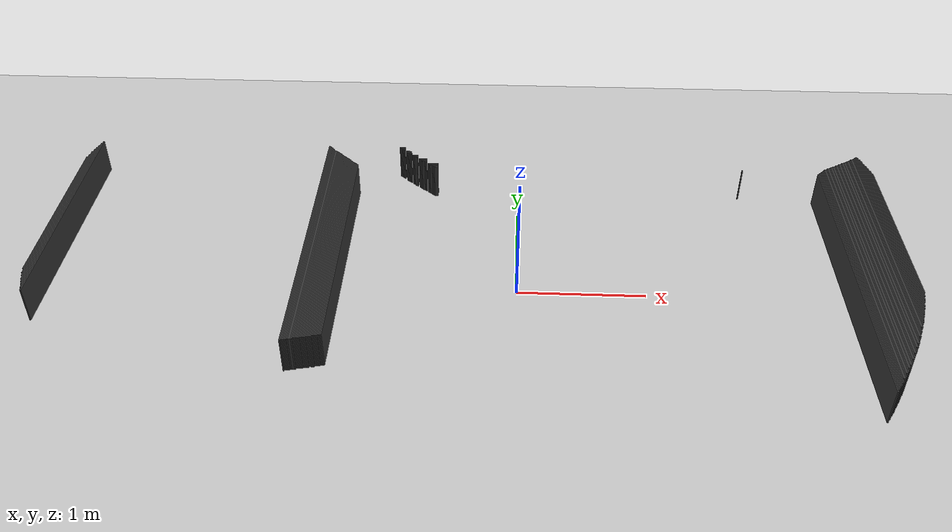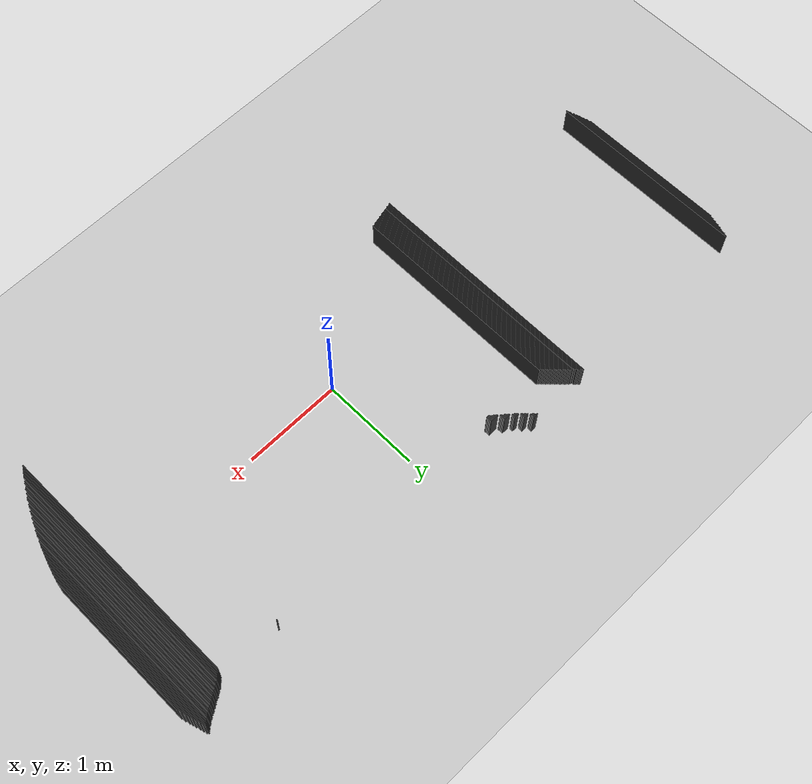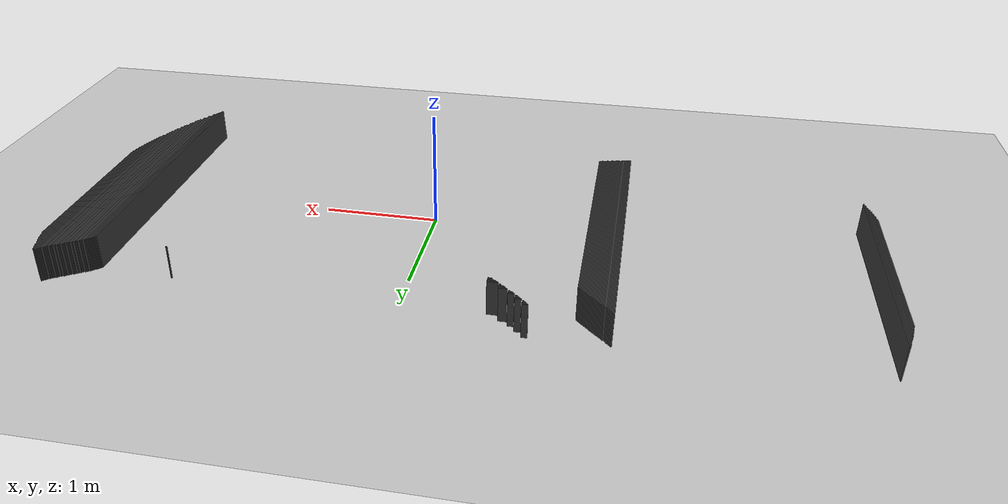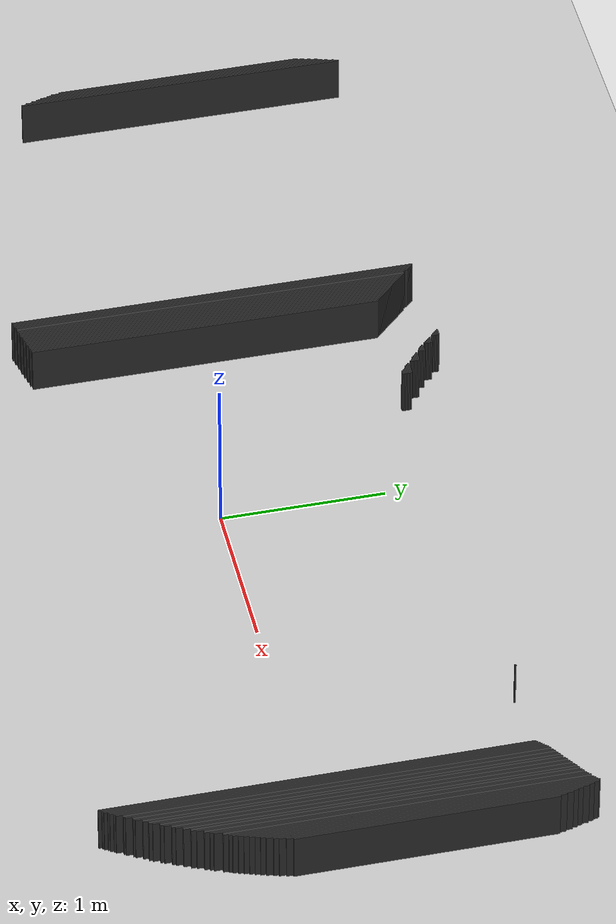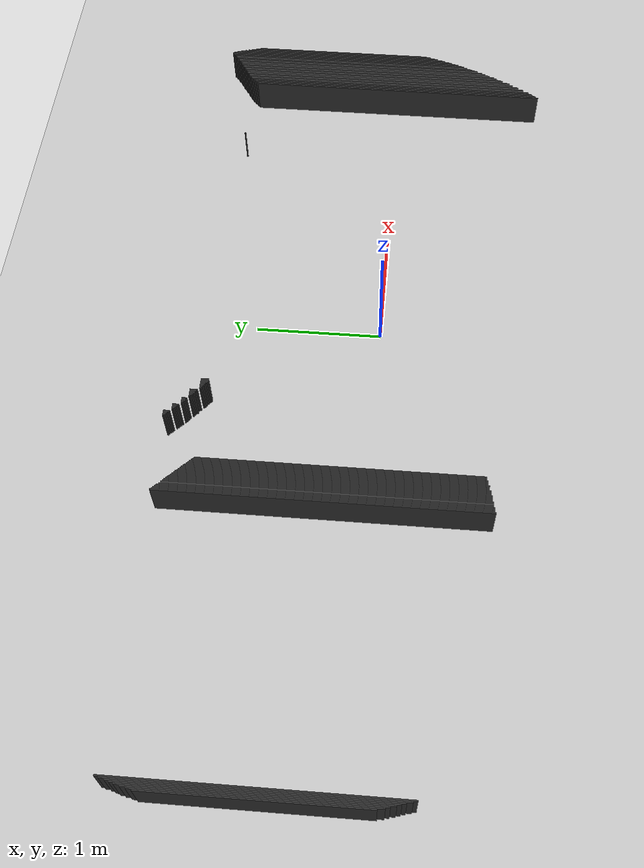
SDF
<sdf version="1.7">
 <world name="mapa_mundo">
  <model name="ground_plane">
   <static>true</static>
   <link name="link">
    <collision name="collision">
     <geometry><plane><normal>0 0 1</normal><size>10 10</size></plane></geometry>
     <surface><friction><ode><mu>100</mu><mu2>50</mu2></ode></friction></surface>
    </collision>
    <visual name="visual">
     <geometry><plane><normal>0 0 1</normal><size>10 10</size></plane></geometry>
     <material>
      <ambient>0.8 0.8 0.8 1</ambient>
      <diffuse>0.8 0.8 0.8 1</diffuse>
      <specular>0.8 0.8 0.8 1</specular>
     </material>
    </visual>
   </link>
  </model>
  <model name="wall_500">
   <static>true</static>
   <link name="link">
    <collision name="collision"><geometry><box><size>0.05 0.01 0.3</size></box></geometry></collision>
    <visual name="visual">
     <geometry><box><size>0.05 0.01 0.3</size></box></geometry>
     <material><ambient>0.2 0.2 0.2 1</ambient><diffuse>0.2 0.2 0.2 1</diffuse></material>
    </visual>
    <pose>-1.0150000000000001 1.565 0.15 0 0 0</pose>
   </link>
  </model>
  <model name="wall_501">
   <static>true</static>
   <link name="link">
    <collision name="collision"><geometry><box><size>0.01 2.07 0.3</size></box></geometry></collision>
    <visual name="visual">
     <geometry><box><size>0.01 2.07 0.3</size></box></geometry>
     <material><ambient>0.2 0.2 0.2 1</ambient><diffuse>0.2 0.2 0.2 1</diffuse></material>
    </visual>
    <pose>2.9050000000000002 0.535 0.15 0 0 0</pose>
   </link>
  </model>
  <model name="wall_502">
   <static>true</static>
   <link name="link">
    <collision name="collision">
     <geometry><box><size>0.01 2.0300000000000002 0.3</size></box></geometry>
    </collision>
    <visual name="visual">
     <geometry><box><size>0.01 2.0300000000000002 0.3</size></box></geometry>
     <material><ambient>0.2 0.2 0.2 1</ambient><diffuse>0.2 0.2 0.2 1</diffuse></material>
    </visual>
    <pose>-3.6550000000000002 0.545 0.15 0 0 0</pose>
   </link>
  </model>
  <model name="wall_503">
   <static>true</static>
   <link name="link">
    <collision name="collision"><geometry><box><size>0.01 2.49 0.3</size></box></geometry></collision>
    <visual name="visual">
     <geometry><box><size>0.01 2.49 0.3</size></box></geometry>
     <material><ambient>0.2 0.2 0.2 1</ambient><diffuse>0.2 0.2 0.2 1</diffuse></material>
    </visual>
    <pose>-1.655 0.315 0.15 0 0 0</pose>
   </link>
  </model>
  <model name="wall_504">
   <static>true</static>
   <link name="link">
    <collision name="collision"><geometry><box><size>0.04 0.01 0.3</size></box></geometry></collision>
    <visual name="visual">
     <geometry><box><size>0.04 0.01 0.3</size></box></geometry>
     <material><ambient>0.2 0.2 0.2 1</ambient><diffuse>0.2 0.2 0.2 1</diffuse></material>
    </visual>
    <pose>-1.01 1.555 0.15 0 0 0</pose>
   </link>
  </model>
  <model name="wall_505">
   <static>true</static>
   <link name="link">
    <collision name="collision"><geometry><box><size>0.01 2.09 0.3</size></box></geometry></collision>
    <visual name="visual">
     <geometry><box><size>0.01 2.09 0.3</size></box></geometry>
     <material><ambient>0.2 0.2 0.2 1</ambient><diffuse>0.2 0.2 0.2 1</diffuse></material>
    </visual>
    <pose>2.895 0.515 0.15 0 0 0</pose>
   </link>
  </model>
  <model name="wall_506">
   <static>true</static>
   <link name="link">
    <collision name="collision">
     <geometry><box><size>0.01 2.0300000000000002 0.3</size></box></geometry>
    </collision>
    <visual name="visual">
     <geometry><box><size>0.01 2.0300000000000002 0.3</size></box></geometry>
     <material><ambient>0.2 0.2 0.2 1</ambient><diffuse>0.2 0.2 0.2 1</diffuse></material>
    </visual>
    <pose>2.915 0.545 0.15 0 0 0</pose>
   </link>
  </model>
  <model name="wall_507">
   <static>true</static>
   <link name="link">
    <collision name="collision"><geometry><box><size>0.01 2.47 0.3</size></box></geometry></collision>
    <visual name="visual">
     <geometry><box><size>0.01 2.47 0.3</size></box></geometry>
     <material><ambient>0.2 0.2 0.2 1</ambient><diffuse>0.2 0.2 0.2 1</diffuse></material>
    </visual>
    <pose>-1.645 0.315 0.15 0 0 0</pose>
   </link>
  </model>
  <model name="wall_508">
   <static>true</static>
   <link name="link">
    <collision name="collision"><geometry><box><size>0.03 0.01 0.3</size></box></geometry></collision>
    <visual name="visual">
     <geometry><box><size>0.03 0.01 0.3</size></box></geometry>
     <material><ambient>0.2 0.2 0.2 1</ambient><diffuse>0.2 0.2 0.2 1</diffuse></material>
    </visual>
    <pose>-1.0050000000000001 1.545 0.15 0 0 0</pose>
   </link>
  </model>
  <model name="wall_509">
   <static>true</static>
   <link name="link">
    <collision name="collision"><geometry><box><size>0.01 2.11 0.3</size></box></geometry></collision>
    <visual name="visual">
     <geometry><box><size>0.01 2.11 0.3</size></box></geometry>
     <material><ambient>0.2 0.2 0.2 1</ambient><diffuse>0.2 0.2 0.2 1</diffuse></material>
    </visual>
    <pose>2.8850000000000002 0.495 0.15 0 0 0</pose>
   </link>
  </model>
  <model name="wall_510">
   <static>true</static>
   <link name="link">
    <collision name="collision"><geometry><box><size>0.01 2.46 0.3</size></box></geometry></collision>
    <visual name="visual">
     <geometry><box><size>0.01 2.46 0.3</size></box></geometry>
     <material><ambient>0.2 0.2 0.2 1</ambient><diffuse>0.2 0.2 0.2 1</diffuse></material>
    </visual>
    <pose>-1.635 0.31 0.15 0 0 0</pose>
   </link>
  </model>
  <model name="wall_511">
   <static>true</static>
   <link name="link">
    <collision name="collision"><geometry><box><size>0.02 0.01 0.3</size></box></geometry></collision>
    <visual name="visual">
     <geometry><box><size>0.02 0.01 0.3</size></box></geometry>
     <material><ambient>0.2 0.2 0.2 1</ambient><diffuse>0.2 0.2 0.2 1</diffuse></material>
    </visual>
    <pose>-1.0 1.5350000000000001 0.15 0 0 0</pose>
   </link>
  </model>
  <model name="wall_512">
   <static>true</static>
   <link name="link">
    <collision name="collision"><geometry><box><size>0.01 2.12 0.3</size></box></geometry></collision>
    <visual name="visual">
     <geometry><box><size>0.01 2.12 0.3</size></box></geometry>
     <material><ambient>0.2 0.2 0.2 1</ambient><diffuse>0.2 0.2 0.2 1</diffuse></material>
    </visual>
    <pose>2.875 0.48 0.15 0 0 0</pose>
   </link>
  </model>
  <model name="wall_513">
   <static>true</static>
   <link name="link">
    <collision name="collision"><geometry><box><size>0.01 1.97 0.3</size></box></geometry></collision>
    <visual name="visual">
     <geometry><box><size>0.01 1.97 0.3</size></box></geometry>
     <material><ambient>0.2 0.2 0.2 1</ambient><diffuse>0.2 0.2 0.2 1</diffuse></material>
    </visual>
    <pose>-3.665 0.545 0.15 0 0 0</pose>
   </link>
  </model>
  <model name="wall_514">
   <static>true</static>
   <link name="link">
    <collision name="collision"><geometry><box><size>0.01 2.45 0.3</size></box></geometry></collision>
    <visual name="visual">
     <geometry><box><size>0.01 2.45 0.3</size></box></geometry>
     <material><ambient>0.2 0.2 0.2 1</ambient><diffuse>0.2 0.2 0.2 1</diffuse></material>
    </visual>
    <pose>-1.625 0.305 0.15 0 0 0</pose>
   </link>
  </model>
  <model name="wall_515">
   <static>true</static>
   <link name="link">
    <collision name="collision"><geometry><box><size>0.01 0.01 0.3</size></box></geometry></collision>
    <visual name="visual">
     <geometry><box><size>0.01 0.01 0.3</size></box></geometry>
     <material><ambient>0.2 0.2 0.2 1</ambient><diffuse>0.2 0.2 0.2 1</diffuse></material>
    </visual>
    <pose>-0.995 1.5250000000000001 0.15 0 0 0</pose>
   </link>
  </model>
  <model name="wall_516">
   <static>true</static>
   <link name="link">
    <collision name="collision"><geometry><box><size>0.02 2.14 0.3</size></box></geometry></collision>
    <visual name="visual">
     <geometry><box><size>0.02 2.14 0.3</size></box></geometry>
     <material><ambient>0.2 0.2 0.2 1</ambient><diffuse>0.2 0.2 0.2 1</diffuse></material>
    </visual>
    <pose>2.86 0.46 0.15 0 0 0</pose>
   </link>
  </model>
  <model name="wall_517">
   <static>true</static>
   <link name="link">
    <collision name="collision"><geometry><box><size>0.01 1.97 0.3</size></box></geometry></collision>
    <visual name="visual">
     <geometry><box><size>0.01 1.97 0.3</size></box></geometry>
     <material><ambient>0.2 0.2 0.2 1</ambient><diffuse>0.2 0.2 0.2 1</diffuse></material>
    </visual>
    <pose>2.9250000000000003 0.545 0.15 0 0 0</pose>
   </link>
  </model>
  <model name="wall_518">
   <static>true</static>
   <link name="link">
    <collision name="collision"><geometry><box><size>0.01 2.44 0.3</size></box></geometry></collision>
    <visual name="visual">
     <geometry><box><size>0.01 2.44 0.3</size></box></geometry>
     <material><ambient>0.2 0.2 0.2 1</ambient><diffuse>0.2 0.2 0.2 1</diffuse></material>
    </visual>
    <pose>-1.615 0.3 0.15 0 0 0</pose>
   </link>
  </model>
  <model name="wall_519">
   <static>true</static>
   <link name="link">
    <collision name="collision"><geometry><box><size>0.01 2.18 0.3</size></box></geometry></collision>
    <visual name="visual">
     <geometry><box><size>0.01 2.18 0.3</size></box></geometry>
     <material><ambient>0.2 0.2 0.2 1</ambient><diffuse>0.2 0.2 0.2 1</diffuse></material>
    </visual>
    <pose>2.845 0.43 0.15 0 0 0</pose>
   </link>
  </model>
  <model name="wall_520">
   <static>true</static>
   <link name="link">
    <collision name="collision"><geometry><box><size>0.05 0.01 0.3</size></box></geometry></collision>
    <visual name="visual">
     <geometry><box><size>0.05 0.01 0.3</size></box></geometry>
     <material><ambient>0.2 0.2 0.2 1</ambient><diffuse>0.2 0.2 0.2 1</diffuse></material>
    </visual>
    <pose>-0.9550000000000001 1.5050000000000001 0.15 0 0 0</pose>
   </link>
  </model>
  <model name="wall_521">
   <static>true</static>
   <link name="link">
    <collision name="collision"><geometry><box><size>0.01 2.19 0.3</size></box></geometry></collision>
    <visual name="visual">
     <geometry><box><size>0.01 2.19 0.3</size></box></geometry>
     <material><ambient>0.2 0.2 0.2 1</ambient><diffuse>0.2 0.2 0.2 1</diffuse></material>
    </visual>
    <pose>2.835 0.41500000000000004 0.15 0 0 0</pose>
   </link>
  </model>
  <model name="wall_522">
   <static>true</static>
   <link name="link">
    <collision name="collision"><geometry><box><size>0.01 2.41 0.3</size></box></geometry></collision>
    <visual name="visual">
     <geometry><box><size>0.01 2.41 0.3</size></box></geometry>
     <material><ambient>0.2 0.2 0.2 1</ambient><diffuse>0.2 0.2 0.2 1</diffuse></material>
    </visual>
    <pose>-1.605 0.295 0.15 0 0 0</pose>
   </link>
  </model>
  <model name="wall_523">
   <static>true</static>
   <link name="link">
    <collision name="collision"><geometry><box><size>0.04 0.01 0.3</size></box></geometry></collision>
    <visual name="visual">
     <geometry><box><size>0.04 0.01 0.3</size></box></geometry>
     <material><ambient>0.2 0.2 0.2 1</ambient><diffuse>0.2 0.2 0.2 1</diffuse></material>
    </visual>
    <pose>-0.9500000000000001 1.495 0.15 0 0 0</pose>
   </link>
  </model>
  <model name="wall_524">
   <static>true</static>
   <link name="link">
    <collision name="collision"><geometry><box><size>0.02 2.21 0.3</size></box></geometry></collision>
    <visual name="visual">
     <geometry><box><size>0.02 2.21 0.3</size></box></geometry>
     <material><ambient>0.2 0.2 0.2 1</ambient><diffuse>0.2 0.2 0.2 1</diffuse></material>
    </visual>
    <pose>2.82 0.395 0.15 0 0 0</pose>
   </link>
  </model>
  <model name="wall_525">
   <static>true</static>
   <link name="link">
    <collision name="collision">
     <geometry><box><size>0.01 1.9100000000000001 0.3</size></box></geometry>
    </collision>
    <visual name="visual">
     <geometry><box><size>0.01 1.9100000000000001 0.3</size></box></geometry>
     <material><ambient>0.2 0.2 0.2 1</ambient><diffuse>0.2 0.2 0.2 1</diffuse></material>
    </visual>
    <pose>2.935 0.545 0.15 0 0 0</pose>
   </link>
  </model>
  <model name="wall_526">
   <static>true</static>
   <link name="link">
    <collision name="collision">
     <geometry><box><size>0.01 1.8900000000000001 0.3</size></box></geometry>
    </collision>
    <visual name="visual">
     <geometry><box><size>0.01 1.8900000000000001 0.3</size></box></geometry>
     <material><ambient>0.2 0.2 0.2 1</ambient><diffuse>0.2 0.2 0.2 1</diffuse></material>
    </visual>
    <pose>-3.6750000000000003 0.545 0.15 0 0 0</pose>
   </link>
  </model>
  <model name="wall_527">
   <static>true</static>
   <link name="link">
    <collision name="collision"><geometry><box><size>0.02 2.4 0.3</size></box></geometry></collision>
    <visual name="visual">
     <geometry><box><size>0.02 2.4 0.3</size></box></geometry>
     <material><ambient>0.2 0.2 0.2 1</ambient><diffuse>0.2 0.2 0.2 1</diffuse></material>
    </visual>
    <pose>-1.59 0.29 0.15 0 0 0</pose>
   </link>
  </model>
  <model name="wall_528">
   <static>true</static>
   <link name="link">
    <collision name="collision"><geometry><box><size>0.03 0.01 0.3</size></box></geometry></collision>
    <visual name="visual">
     <geometry><box><size>0.03 0.01 0.3</size></box></geometry>
     <material><ambient>0.2 0.2 0.2 1</ambient><diffuse>0.2 0.2 0.2 1</diffuse></material>
    </visual>
    <pose>-0.9450000000000001 1.485 0.15 0 0 0</pose>
   </link>
  </model>
  <model name="wall_529">
   <static>true</static>
   <link name="link">
    <collision name="collision"><geometry><box><size>0.01 2.24 0.3</size></box></geometry></collision>
    <visual name="visual">
     <geometry><box><size>0.01 2.24 0.3</size></box></geometry>
     <material><ambient>0.2 0.2 0.2 1</ambient><diffuse>0.2 0.2 0.2 1</diffuse></material>
    </visual>
    <pose>2.805 0.37 0.15 0 0 0</pose>
   </link>
  </model>
  <model name="wall_530">
   <static>true</static>
   <link name="link">
    <collision name="collision"><geometry><box><size>0.01 2.39 0.3</size></box></geometry></collision>
    <visual name="visual">
     <geometry><box><size>0.01 2.39 0.3</size></box></geometry>
     <material><ambient>0.2 0.2 0.2 1</ambient><diffuse>0.2 0.2 0.2 1</diffuse></material>
    </visual>
    <pose>-1.575 0.28500000000000003 0.15 0 0 0</pose>
   </link>
  </model>
  <model name="wall_531">
   <static>true</static>
   <link name="link">
    <collision name="collision"><geometry><box><size>0.02 0.01 0.3</size></box></geometry></collision>
    <visual name="visual">
     <geometry><box><size>0.02 0.01 0.3</size></box></geometry>
     <material><ambient>0.2 0.2 0.2 1</ambient><diffuse>0.2 0.2 0.2 1</diffuse></material>
    </visual>
    <pose>-0.9400000000000001 1.475 0.15 0 0 0</pose>
   </link>
  </model>
  <model name="wall_532">
   <static>true</static>
   <link name="link">
    <collision name="collision">
     <geometry><box><size>0.02 2.2600000000000002 0.3</size></box></geometry>
    </collision>
    <visual name="visual">
     <geometry><box><size>0.02 2.2600000000000002 0.3</size></box></geometry>
     <material><ambient>0.2 0.2 0.2 1</ambient><diffuse>0.2 0.2 0.2 1</diffuse></material>
    </visual>
    <pose>2.79 0.35000000000000003 0.15 0 0 0</pose>
   </link>
  </model>
  <model name="wall_533">
   <static>true</static>
   <link name="link">
    <collision name="collision"><geometry><box><size>0.01 2.37 0.3</size></box></geometry></collision>
    <visual name="visual">
     <geometry><box><size>0.01 2.37 0.3</size></box></geometry>
     <material><ambient>0.2 0.2 0.2 1</ambient><diffuse>0.2 0.2 0.2 1</diffuse></material>
    </visual>
    <pose>-1.565 0.28500000000000003 0.15 0 0 0</pose>
   </link>
  </model>
  <model name="wall_534">
   <static>true</static>
   <link name="link">
    <collision name="collision"><geometry><box><size>0.01 0.01 0.3</size></box></geometry></collision>
    <visual name="visual">
     <geometry><box><size>0.01 0.01 0.3</size></box></geometry>
     <material><ambient>0.2 0.2 0.2 1</ambient><diffuse>0.2 0.2 0.2 1</diffuse></material>
    </visual>
    <pose>-0.935 1.465 0.15 0 0 0</pose>
   </link>
  </model>
  <model name="wall_535">
   <static>true</static>
   <link name="link">
    <collision name="collision"><geometry><box><size>0.02 2.29 0.3</size></box></geometry></collision>
    <visual name="visual">
     <geometry><box><size>0.02 2.29 0.3</size></box></geometry>
     <material><ambient>0.2 0.2 0.2 1</ambient><diffuse>0.2 0.2 0.2 1</diffuse></material>
    </visual>
    <pose>2.77 0.325 0.15 0 0 0</pose>
   </link>
  </model>
  <model name="wall_536">
   <static>true</static>
   <link name="link">
    <collision name="collision"><geometry><box><size>0.01 1.83 0.3</size></box></geometry></collision>
    <visual name="visual">
     <geometry><box><size>0.01 1.83 0.3</size></box></geometry>
     <material><ambient>0.2 0.2 0.2 1</ambient><diffuse>0.2 0.2 0.2 1</diffuse></material>
    </visual>
    <pose>-3.685 0.545 0.15 0 0 0</pose>
   </link>
  </model>
  <model name="wall_537">
   <static>true</static>
   <link name="link">
    <collision name="collision"><geometry><box><size>0.01 2.36 0.3</size></box></geometry></collision>
    <visual name="visual">
     <geometry><box><size>0.01 2.36 0.3</size></box></geometry>
     <material><ambient>0.2 0.2 0.2 1</ambient><diffuse>0.2 0.2 0.2 1</diffuse></material>
    </visual>
    <pose>-1.555 0.28 0.15 0 0 0</pose>
   </link>
  </model>
  <model name="wall_538">
   <static>true</static>
   <link name="link">
    <collision name="collision"><geometry><box><size>0.01 2.32 0.3</size></box></geometry></collision>
    <visual name="visual">
     <geometry><box><size>0.01 2.32 0.3</size></box></geometry>
     <material><ambient>0.2 0.2 0.2 1</ambient><diffuse>0.2 0.2 0.2 1</diffuse></material>
    </visual>
    <pose>2.755 0.3 0.15 0 0 0</pose>
   </link>
  </model>
  <model name="wall_539">
   <static>true</static>
   <link name="link">
    <collision name="collision"><geometry><box><size>0.01 1.84 0.3</size></box></geometry></collision>
    <visual name="visual">
     <geometry><box><size>0.01 1.84 0.3</size></box></geometry>
     <material><ambient>0.2 0.2 0.2 1</ambient><diffuse>0.2 0.2 0.2 1</diffuse></material>
    </visual>
    <pose>2.945 0.54 0.15 0 0 0</pose>
   </link>
  </model>
  <model name="wall_540">
   <static>true</static>
   <link name="link">
    <collision name="collision"><geometry><box><size>0.01 2.35 0.3</size></box></geometry></collision>
    <visual name="visual">
     <geometry><box><size>0.01 2.35 0.3</size></box></geometry>
     <material><ambient>0.2 0.2 0.2 1</ambient><diffuse>0.2 0.2 0.2 1</diffuse></material>
    </visual>
    <pose>-1.545 0.275 0.15 0 0 0</pose>
   </link>
  </model>
  <model name="wall_541">
   <static>true</static>
   <link name="link">
    <collision name="collision"><geometry><box><size>0.05 0.01 0.3</size></box></geometry></collision>
    <visual name="visual">
     <geometry><box><size>0.05 0.01 0.3</size></box></geometry>
     <material><ambient>0.2 0.2 0.2 1</ambient><diffuse>0.2 0.2 0.2 1</diffuse></material>
    </visual>
    <pose>-0.895 1.445 0.15 0 0 0</pose>
   </link>
  </model>
  <model name="wall_542">
   <static>true</static>
   <link name="link">
    <collision name="collision"><geometry><box><size>0.02 2.33 0.3</size></box></geometry></collision>
    <visual name="visual">
     <geometry><box><size>0.02 2.33 0.3</size></box></geometry>
     <material><ambient>0.2 0.2 0.2 1</ambient><diffuse>0.2 0.2 0.2 1</diffuse></material>
    </visual>
    <pose>2.74 0.28500000000000003 0.15 0 0 0</pose>
   </link>
  </model>
  <model name="wall_543">
   <static>true</static>
   <link name="link">
    <collision name="collision"><geometry><box><size>0.01 2.34 0.3</size></box></geometry></collision>
    <visual name="visual">
     <geometry><box><size>0.01 2.34 0.3</size></box></geometry>
     <material><ambient>0.2 0.2 0.2 1</ambient><diffuse>0.2 0.2 0.2 1</diffuse></material>
    </visual>
    <pose>-1.5350000000000001 0.27 0.15 0 0 0</pose>
   </link>
  </model>
  <model name="wall_544">
   <static>true</static>
   <link name="link">
    <collision name="collision"><geometry><box><size>0.04 0.01 0.3</size></box></geometry></collision>
    <visual name="visual">
     <geometry><box><size>0.04 0.01 0.3</size></box></geometry>
     <material><ambient>0.2 0.2 0.2 1</ambient><diffuse>0.2 0.2 0.2 1</diffuse></material>
    </visual>
    <pose>-0.89 1.435 0.15 0 0 0</pose>
   </link>
  </model>
  <model name="wall_545">
   <static>true</static>
   <link name="link">
    <collision name="collision"><geometry><box><size>0.01 2.36 0.3</size></box></geometry></collision>
    <visual name="visual">
     <geometry><box><size>0.01 2.36 0.3</size></box></geometry>
     <material><ambient>0.2 0.2 0.2 1</ambient><diffuse>0.2 0.2 0.2 1</diffuse></material>
    </visual>
    <pose>2.725 0.26 0.15 0 0 0</pose>
   </link>
  </model>
  <model name="wall_546">
   <static>true</static>
   <link name="link">
    <collision name="collision"><geometry><box><size>0.01 1.77 0.3</size></box></geometry></collision>
    <visual name="visual">
     <geometry><box><size>0.01 1.77 0.3</size></box></geometry>
     <material><ambient>0.2 0.2 0.2 1</ambient><diffuse>0.2 0.2 0.2 1</diffuse></material>
    </visual>
    <pose>-3.6950000000000003 0.545 0.15 0 0 0</pose>
   </link>
  </model>
  <model name="wall_547">
   <static>true</static>
   <link name="link">
    <collision name="collision"><geometry><box><size>0.01 2.33 0.3</size></box></geometry></collision>
    <visual name="visual">
     <geometry><box><size>0.01 2.33 0.3</size></box></geometry>
     <material><ambient>0.2 0.2 0.2 1</ambient><diffuse>0.2 0.2 0.2 1</diffuse></material>
    </visual>
    <pose>-1.5250000000000001 0.265 0.15 0 0 0</pose>
   </link>
  </model>
  <model name="wall_548">
   <static>true</static>
   <link name="link">
    <collision name="collision"><geometry><box><size>0.03 0.01 0.3</size></box></geometry></collision>
    <visual name="visual">
     <geometry><box><size>0.03 0.01 0.3</size></box></geometry>
     <material><ambient>0.2 0.2 0.2 1</ambient><diffuse>0.2 0.2 0.2 1</diffuse></material>
    </visual>
    <pose>-0.885 1.425 0.15 0 0 0</pose>
   </link>
  </model>
  <model name="wall_549">
   <static>true</static>
   <link name="link">
    <collision name="collision"><geometry><box><size>0.02 2.37 0.3</size></box></geometry></collision>
    <visual name="visual">
     <geometry><box><size>0.02 2.37 0.3</size></box></geometry>
     <material><ambient>0.2 0.2 0.2 1</ambient><diffuse>0.2 0.2 0.2 1</diffuse></material>
    </visual>
    <pose>2.71 0.245 0.15 0 0 0</pose>
   </link>
  </model>
  <model name="wall_550">
   <static>true</static>
   <link name="link">
    <collision name="collision"><geometry><box><size>0.01 1.77 0.3</size></box></geometry></collision>
    <visual name="visual">
     <geometry><box><size>0.01 1.77 0.3</size></box></geometry>
     <material><ambient>0.2 0.2 0.2 1</ambient><diffuse>0.2 0.2 0.2 1</diffuse></material>
    </visual>
    <pose>2.955 0.545 0.15 0 0 0</pose>
   </link>
  </model>
  <model name="wall_551">
   <static>true</static>
   <link name="link">
    <collision name="collision"><geometry><box><size>0.01 2.31 0.3</size></box></geometry></collision>
    <visual name="visual">
     <geometry><box><size>0.01 2.31 0.3</size></box></geometry>
     <material><ambient>0.2 0.2 0.2 1</ambient><diffuse>0.2 0.2 0.2 1</diffuse></material>
    </visual>
    <pose>-1.5150000000000001 0.265 0.15 0 0 0</pose>
   </link>
  </model>
  <model name="wall_552">
   <static>true</static>
   <link name="link">
    <collision name="collision"><geometry><box><size>0.01 0.01 0.3</size></box></geometry></collision>
    <visual name="visual">
     <geometry><box><size>0.01 0.01 0.3</size></box></geometry>
     <material><ambient>0.2 0.2 0.2 1</ambient><diffuse>0.2 0.2 0.2 1</diffuse></material>
    </visual>
    <pose>-0.875 1.415 0.15 0 0 0</pose>
   </link>
  </model>
  <model name="wall_553">
   <static>true</static>
   <link name="link">
    <collision name="collision"><geometry><box><size>0.01 2.4 0.3</size></box></geometry></collision>
    <visual name="visual">
     <geometry><box><size>0.01 2.4 0.3</size></box></geometry>
     <material><ambient>0.2 0.2 0.2 1</ambient><diffuse>0.2 0.2 0.2 1</diffuse></material>
    </visual>
    <pose>2.695 0.22 0.15 0 0 0</pose>
   </link>
  </model>
  <model name="wall_554">
   <static>true</static>
   <link name="link">
    <collision name="collision">
     <geometry><box><size>0.01 2.3000000000000003 0.3</size></box></geometry>
    </collision>
    <visual name="visual">
     <geometry><box><size>0.01 2.3000000000000003 0.3</size></box></geometry>
     <material><ambient>0.2 0.2 0.2 1</ambient><diffuse>0.2 0.2 0.2 1</diffuse></material>
    </visual>
    <pose>-1.5050000000000001 0.26 0.15 0 0 0</pose>
   </link>
  </model>
  <model name="wall_555">
   <static>true</static>
   <link name="link">
    <collision name="collision"><geometry><box><size>0.02 2.41 0.3</size></box></geometry></collision>
    <visual name="visual">
     <geometry><box><size>0.02 2.41 0.3</size></box></geometry>
     <material><ambient>0.2 0.2 0.2 1</ambient><diffuse>0.2 0.2 0.2 1</diffuse></material>
    </visual>
    <pose>2.68 0.20500000000000002 0.15 0 0 0</pose>
   </link>
  </model>
  <model name="wall_556">
   <static>true</static>
   <link name="link">
    <collision name="collision"><geometry><box><size>0.01 2.29 0.3</size></box></geometry></collision>
    <visual name="visual">
     <geometry><box><size>0.01 2.29 0.3</size></box></geometry>
     <material><ambient>0.2 0.2 0.2 1</ambient><diffuse>0.2 0.2 0.2 1</diffuse></material>
    </visual>
    <pose>-1.495 0.255 0.15 0 0 0</pose>
   </link>
  </model>
  <model name="wall_557">
   <static>true</static>
   <link name="link">
    <collision name="collision"><geometry><box><size>0.07 0.01 0.3</size></box></geometry></collision>
    <visual name="visual">
     <geometry><box><size>0.07 0.01 0.3</size></box></geometry>
     <material><ambient>0.2 0.2 0.2 1</ambient><diffuse>0.2 0.2 0.2 1</diffuse></material>
    </visual>
    <pose>-0.8250000000000001 1.395 0.15 0 0 0</pose>
   </link>
  </model>
  <model name="wall_558">
   <static>true</static>
   <link name="link">
    <collision name="collision"><geometry><box><size>0.02 2.43 0.3</size></box></geometry></collision>
    <visual name="visual">
     <geometry><box><size>0.02 2.43 0.3</size></box></geometry>
     <material><ambient>0.2 0.2 0.2 1</ambient><diffuse>0.2 0.2 0.2 1</diffuse></material>
    </visual>
    <pose>2.66 0.185 0.15 0 0 0</pose>
   </link>
  </model>
  <model name="wall_559">
   <static>true</static>
   <link name="link">
    <collision name="collision"><geometry><box><size>0.01 1.71 0.3</size></box></geometry></collision>
    <visual name="visual">
     <geometry><box><size>0.01 1.71 0.3</size></box></geometry>
     <material><ambient>0.2 0.2 0.2 1</ambient><diffuse>0.2 0.2 0.2 1</diffuse></material>
    </visual>
    <pose>2.965 0.545 0.15 0 0 0</pose>
   </link>
  </model>
  <model name="wall_560">
   <static>true</static>
   <link name="link">
    <collision name="collision"><geometry><box><size>0.01 1.69 0.3</size></box></geometry></collision>
    <visual name="visual">
     <geometry><box><size>0.01 1.69 0.3</size></box></geometry>
     <material><ambient>0.2 0.2 0.2 1</ambient><diffuse>0.2 0.2 0.2 1</diffuse></material>
    </visual>
    <pose>-3.705 0.545 0.15 0 0 0</pose>
   </link>
  </model>
  <model name="wall_561">
   <static>true</static>
   <link name="link">
    <collision name="collision">
     <geometry><box><size>0.01 2.2800000000000002 0.3</size></box></geometry>
    </collision>
    <visual name="visual">
     <geometry><box><size>0.01 2.2800000000000002 0.3</size></box></geometry>
     <material><ambient>0.2 0.2 0.2 1</ambient><diffuse>0.2 0.2 0.2 1</diffuse></material>
    </visual>
    <pose>-1.485 0.25 0.15 0 0 0</pose>
   </link>
  </model>
  <model name="wall_562">
   <static>true</static>
   <link name="link">
    <collision name="collision"><geometry><box><size>0.06 0.01 0.3</size></box></geometry></collision>
    <visual name="visual">
     <geometry><box><size>0.06 0.01 0.3</size></box></geometry>
     <material><ambient>0.2 0.2 0.2 1</ambient><diffuse>0.2 0.2 0.2 1</diffuse></material>
    </visual>
    <pose>-0.8200000000000001 1.385 0.15 0 0 0</pose>
   </link>
  </model>
  <model name="wall_563">
   <static>true</static>
   <link name="link">
    <collision name="collision"><geometry><box><size>0.01 2.46 0.3</size></box></geometry></collision>
    <visual name="visual">
     <geometry><box><size>0.01 2.46 0.3</size></box></geometry>
     <material><ambient>0.2 0.2 0.2 1</ambient><diffuse>0.2 0.2 0.2 1</diffuse></material>
    </visual>
    <pose>2.645 0.16 0.15 0 0 0</pose>
   </link>
  </model>
  <model name="wall_564">
   <static>true</static>
   <link name="link">
    <collision name="collision">
     <geometry><box><size>0.01 2.2600000000000002 0.3</size></box></geometry>
    </collision>
    <visual name="visual">
     <geometry><box><size>0.01 2.2600000000000002 0.3</size></box></geometry>
     <material><ambient>0.2 0.2 0.2 1</ambient><diffuse>0.2 0.2 0.2 1</diffuse></material>
    </visual>
    <pose>-1.475 0.25 0.15 0 0 0</pose>
   </link>
  </model>
  <model name="wall_565">
   <static>true</static>
   <link name="link">
    <collision name="collision"><geometry><box><size>0.05 0.01 0.3</size></box></geometry></collision>
    <visual name="visual">
     <geometry><box><size>0.05 0.01 0.3</size></box></geometry>
     <material><ambient>0.2 0.2 0.2 1</ambient><diffuse>0.2 0.2 0.2 1</diffuse></material>
    </visual>
    <pose>-0.8150000000000001 1.375 0.15 0 0 0</pose>
   </link>
  </model>
  <model name="wall_566">
   <static>true</static>
   <link name="link">
    <collision name="collision"><geometry><box><size>0.02 2.46 0.3</size></box></geometry></collision>
    <visual name="visual">
     <geometry><box><size>0.02 2.46 0.3</size></box></geometry>
     <material><ambient>0.2 0.2 0.2 1</ambient><diffuse>0.2 0.2 0.2 1</diffuse></material>
    </visual>
    <pose>2.63 0.15 0.15 0 0 0</pose>
   </link>
  </model>
  <model name="wall_567">
   <static>true</static>
   <link name="link">
    <collision name="collision"><geometry><box><size>0.01 2.25 0.3</size></box></geometry></collision>
    <visual name="visual">
     <geometry><box><size>0.01 2.25 0.3</size></box></geometry>
     <material><ambient>0.2 0.2 0.2 1</ambient><diffuse>0.2 0.2 0.2 1</diffuse></material>
    </visual>
    <pose>-1.465 0.245 0.15 0 0 0</pose>
   </link>
  </model>
  <model name="wall_568">
   <static>true</static>
   <link name="link">
    <collision name="collision"><geometry><box><size>0.04 0.01 0.3</size></box></geometry></collision>
    <visual name="visual">
     <geometry><box><size>0.04 0.01 0.3</size></box></geometry>
     <material><ambient>0.2 0.2 0.2 1</ambient><diffuse>0.2 0.2 0.2 1</diffuse></material>
    </visual>
    <pose>-0.81 1.365 0.15 0 0 0</pose>
   </link>
  </model>
  <model name="wall_569">
   <static>true</static>
   <link name="link">
    <collision name="collision"><geometry><box><size>0.01 2.49 0.3</size></box></geometry></collision>
    <visual name="visual">
     <geometry><box><size>0.01 2.49 0.3</size></box></geometry>
     <material><ambient>0.2 0.2 0.2 1</ambient><diffuse>0.2 0.2 0.2 1</diffuse></material>
    </visual>
    <pose>2.615 0.125 0.15 0 0 0</pose>
   </link>
  </model>
  <model name="wall_570">
   <static>true</static>
   <link name="link">
    <collision name="collision"><geometry><box><size>0.01 2.24 0.3</size></box></geometry></collision>
    <visual name="visual">
     <geometry><box><size>0.01 2.24 0.3</size></box></geometry>
     <material><ambient>0.2 0.2 0.2 1</ambient><diffuse>0.2 0.2 0.2 1</diffuse></material>
    </visual>
    <pose>-1.455 0.24 0.15 0 0 0</pose>
   </link>
  </model>
  <model name="wall_571">
   <static>true</static>
   <link name="link">
    <collision name="collision"><geometry><box><size>0.02 0.01 0.3</size></box></geometry></collision>
    <visual name="visual">
     <geometry><box><size>0.02 0.01 0.3</size></box></geometry>
     <material><ambient>0.2 0.2 0.2 1</ambient><diffuse>0.2 0.2 0.2 1</diffuse></material>
    </visual>
    <pose>-0.8 1.355 0.15 0 0 0</pose>
   </link>
  </model>
  <model name="wall_572">
   <static>true</static>
   <link name="link">
    <collision name="collision"><geometry><box><size>0.02 2.49 0.3</size></box></geometry></collision>
    <visual name="visual">
     <geometry><box><size>0.02 2.49 0.3</size></box></geometry>
     <material><ambient>0.2 0.2 0.2 1</ambient><diffuse>0.2 0.2 0.2 1</diffuse></material>
    </visual>
    <pose>2.6 0.115 0.15 0 0 0</pose>
   </link>
  </model>
  <model name="wall_573">
   <static>true</static>
   <link name="link">
    <collision name="collision">
     <geometry><box><size>0.01 1.6300000000000001 0.3</size></box></geometry>
    </collision>
    <visual name="visual">
     <geometry><box><size>0.01 1.6300000000000001 0.3</size></box></geometry>
     <material><ambient>0.2 0.2 0.2 1</ambient><diffuse>0.2 0.2 0.2 1</diffuse></material>
    </visual>
    <pose>2.975 0.545 0.15 0 0 0</pose>
   </link>
  </model>
  <model name="wall_574">
   <static>true</static>
   <link name="link">
    <collision name="collision"><geometry><box><size>0.01 1.62 0.3</size></box></geometry></collision>
    <visual name="visual">
     <geometry><box><size>0.01 1.62 0.3</size></box></geometry>
     <material><ambient>0.2 0.2 0.2 1</ambient><diffuse>0.2 0.2 0.2 1</diffuse></material>
    </visual>
    <pose>-3.715 0.54 0.15 0 0 0</pose>
   </link>
  </model>
  <model name="wall_575">
   <static>true</static>
   <link name="link">
    <collision name="collision"><geometry><box><size>0.01 2.23 0.3</size></box></geometry></collision>
    <visual name="visual">
     <geometry><box><size>0.01 2.23 0.3</size></box></geometry>
     <material><ambient>0.2 0.2 0.2 1</ambient><diffuse>0.2 0.2 0.2 1</diffuse></material>
    </visual>
    <pose>-1.445 0.23500000000000001 0.15 0 0 0</pose>
   </link>
  </model>
  <model name="wall_576">
   <static>true</static>
   <link name="link">
    <collision name="collision"><geometry><box><size>0.01 0.01 0.3</size></box></geometry></collision>
    <visual name="visual">
     <geometry><box><size>0.01 0.01 0.3</size></box></geometry>
     <material><ambient>0.2 0.2 0.2 1</ambient><diffuse>0.2 0.2 0.2 1</diffuse></material>
    </visual>
    <pose>-0.795 1.345 0.15 0 0 0</pose>
   </link>
  </model>
  <model name="wall_577">
   <static>true</static>
   <link name="link">
    <collision name="collision"><geometry><box><size>0.01 2.52 0.3</size></box></geometry></collision>
    <visual name="visual">
     <geometry><box><size>0.01 2.52 0.3</size></box></geometry>
     <material><ambient>0.2 0.2 0.2 1</ambient><diffuse>0.2 0.2 0.2 1</diffuse></material>
    </visual>
    <pose>2.585 0.09 0.15 0 0 0</pose>
   </link>
  </model>
  <model name="wall_578">
   <static>true</static>
   <link name="link">
    <collision name="collision"><geometry><box><size>0.01 2.21 0.3</size></box></geometry></collision>
    <visual name="visual">
     <geometry><box><size>0.01 2.21 0.3</size></box></geometry>
     <material><ambient>0.2 0.2 0.2 1</ambient><diffuse>0.2 0.2 0.2 1</diffuse></material>
    </visual>
    <pose>-1.435 0.23500000000000001 0.15 0 0 0</pose>
   </link>
  </model>
  <model name="wall_579">
   <static>true</static>
   <link name="link">
    <collision name="collision"><geometry><box><size>0.01 2.52 0.3</size></box></geometry></collision>
    <visual name="visual">
     <geometry><box><size>0.01 2.52 0.3</size></box></geometry>
     <material><ambient>0.2 0.2 0.2 1</ambient><diffuse>0.2 0.2 0.2 1</diffuse></material>
    </visual>
    <pose>2.575 0.08 0.15 0 0 0</pose>
   </link>
  </model>
  <model name="wall_580">
   <static>true</static>
   <link name="link">
    <collision name="collision"><geometry><box><size>0.01 2.2 0.3</size></box></geometry></collision>
    <visual name="visual">
     <geometry><box><size>0.01 2.2 0.3</size></box></geometry>
     <material><ambient>0.2 0.2 0.2 1</ambient><diffuse>0.2 0.2 0.2 1</diffuse></material>
    </visual>
    <pose>-1.425 0.23 0.15 0 0 0</pose>
   </link>
  </model>
  <model name="wall_581">
   <static>true</static>
   <link name="link">
    <collision name="collision"><geometry><box><size>0.09 0.01 0.3</size></box></geometry></collision>
    <visual name="visual">
     <geometry><box><size>0.09 0.01 0.3</size></box></geometry>
     <material><ambient>0.2 0.2 0.2 1</ambient><diffuse>0.2 0.2 0.2 1</diffuse></material>
    </visual>
    <pose>-0.735 1.325 0.15 0 0 0</pose>
   </link>
  </model>
  <model name="wall_582">
   <static>true</static>
   <link name="link">
    <collision name="collision"><geometry><box><size>0.01 0.01 0.3</size></box></geometry></collision>
    <visual name="visual">
     <geometry><box><size>0.01 0.01 0.3</size></box></geometry>
     <material><ambient>0.2 0.2 0.2 1</ambient><diffuse>0.2 0.2 0.2 1</diffuse></material>
    </visual>
    <pose>1.895 1.325 0.15 0 0 0</pose>
   </link>
  </model>
  <model name="wall_583">
   <static>true</static>
   <link name="link">
    <collision name="collision">
     <geometry><box><size>0.01 2.5300000000000002 0.3</size></box></geometry>
    </collision>
    <visual name="visual">
     <geometry><box><size>0.01 2.5300000000000002 0.3</size></box></geometry>
     <material><ambient>0.2 0.2 0.2 1</ambient><diffuse>0.2 0.2 0.2 1</diffuse></material>
    </visual>
    <pose>2.565 0.065 0.15 0 0 0</pose>
   </link>
  </model>
  <model name="wall_584">
   <static>true</static>
   <link name="link">
    <collision name="collision"><geometry><box><size>0.01 2.19 0.3</size></box></geometry></collision>
    <visual name="visual">
     <geometry><box><size>0.01 2.19 0.3</size></box></geometry>
     <material><ambient>0.2 0.2 0.2 1</ambient><diffuse>0.2 0.2 0.2 1</diffuse></material>
    </visual>
    <pose>-1.415 0.225 0.15 0 0 0</pose>
   </link>
  </model>
  <model name="wall_585">
   <static>true</static>
   <link name="link">
    <collision name="collision"><geometry><box><size>0.08 0.01 0.3</size></box></geometry></collision>
    <visual name="visual">
     <geometry><box><size>0.08 0.01 0.3</size></box></geometry>
     <material><ambient>0.2 0.2 0.2 1</ambient><diffuse>0.2 0.2 0.2 1</diffuse></material>
    </visual>
    <pose>-0.73 1.315 0.15 0 0 0</pose>
   </link>
  </model>
  <model name="wall_586">
   <static>true</static>
   <link name="link">
    <collision name="collision">
     <geometry><box><size>0.01 2.5300000000000002 0.3</size></box></geometry>
    </collision>
    <visual name="visual">
     <geometry><box><size>0.01 2.5300000000000002 0.3</size></box></geometry>
     <material><ambient>0.2 0.2 0.2 1</ambient><diffuse>0.2 0.2 0.2 1</diffuse></material>
    </visual>
    <pose>2.555 0.055 0.15 0 0 0</pose>
   </link>
  </model>
  <model name="wall_587">
   <static>true</static>
   <link name="link">
    <collision name="collision"><geometry><box><size>0.01 1.55 0.3</size></box></geometry></collision>
    <visual name="visual">
     <geometry><box><size>0.01 1.55 0.3</size></box></geometry>
     <material><ambient>0.2 0.2 0.2 1</ambient><diffuse>0.2 0.2 0.2 1</diffuse></material>
    </visual>
    <pose>2.985 0.545 0.15 0 0 0</pose>
   </link>
  </model>
  <model name="wall_588">
   <static>true</static>
   <link name="link">
    <collision name="collision"><geometry><box><size>0.01 1.53 0.3</size></box></geometry></collision>
    <visual name="visual">
     <geometry><box><size>0.01 1.53 0.3</size></box></geometry>
     <material><ambient>0.2 0.2 0.2 1</ambient><diffuse>0.2 0.2 0.2 1</diffuse></material>
    </visual>
    <pose>-3.725 0.545 0.15 0 0 0</pose>
   </link>
  </model>
  <model name="wall_589">
   <static>true</static>
   <link name="link">
    <collision name="collision"><geometry><box><size>0.01 2.18 0.3</size></box></geometry></collision>
    <visual name="visual">
     <geometry><box><size>0.01 2.18 0.3</size></box></geometry>
     <material><ambient>0.2 0.2 0.2 1</ambient><diffuse>0.2 0.2 0.2 1</diffuse></material>
    </visual>
    <pose>-1.405 0.22 0.15 0 0 0</pose>
   </link>
  </model>
  <model name="wall_590">
   <static>true</static>
   <link name="link">
    <collision name="collision"><geometry><box><size>0.07 0.01 0.3</size></box></geometry></collision>
    <visual name="visual">
     <geometry><box><size>0.07 0.01 0.3</size></box></geometry>
     <material><ambient>0.2 0.2 0.2 1</ambient><diffuse>0.2 0.2 0.2 1</diffuse></material>
    </visual>
    <pose>-0.725 1.305 0.15 0 0 0</pose>
   </link>
  </model>
  <model name="wall_591">
   <static>true</static>
   <link name="link">
    <collision name="collision"><geometry><box><size>0.01 2.54 0.3</size></box></geometry></collision>
    <visual name="visual">
     <geometry><box><size>0.01 2.54 0.3</size></box></geometry>
     <material><ambient>0.2 0.2 0.2 1</ambient><diffuse>0.2 0.2 0.2 1</diffuse></material>
    </visual>
    <pose>2.545 0.04 0.15 0 0 0</pose>
   </link>
  </model>
  <model name="wall_592">
   <static>true</static>
   <link name="link">
    <collision name="collision"><geometry><box><size>0.01 2.16 0.3</size></box></geometry></collision>
    <visual name="visual">
     <geometry><box><size>0.01 2.16 0.3</size></box></geometry>
     <material><ambient>0.2 0.2 0.2 1</ambient><diffuse>0.2 0.2 0.2 1</diffuse></material>
    </visual>
    <pose>-1.395 0.22 0.15 0 0 0</pose>
   </link>
  </model>
  <model name="wall_593">
   <static>true</static>
   <link name="link">
    <collision name="collision"><geometry><box><size>0.05 0.01 0.3</size></box></geometry></collision>
    <visual name="visual">
     <geometry><box><size>0.05 0.01 0.3</size></box></geometry>
     <material><ambient>0.2 0.2 0.2 1</ambient><diffuse>0.2 0.2 0.2 1</diffuse></material>
    </visual>
    <pose>-0.715 1.295 0.15 0 0 0</pose>
   </link>
  </model>
  <model name="wall_594">
   <static>true</static>
   <link name="link">
    <collision name="collision"><geometry><box><size>0.01 2.54 0.3</size></box></geometry></collision>
    <visual name="visual">
     <geometry><box><size>0.01 2.54 0.3</size></box></geometry>
     <material><ambient>0.2 0.2 0.2 1</ambient><diffuse>0.2 0.2 0.2 1</diffuse></material>
    </visual>
    <pose>2.535 0.03 0.15 0 0 0</pose>
   </link>
  </model>
  <model name="wall_595">
   <static>true</static>
   <link name="link">
    <collision name="collision"><geometry><box><size>0.01 2.15 0.3</size></box></geometry></collision>
    <visual name="visual">
     <geometry><box><size>0.01 2.15 0.3</size></box></geometry>
     <material><ambient>0.2 0.2 0.2 1</ambient><diffuse>0.2 0.2 0.2 1</diffuse></material>
    </visual>
    <pose>-1.385 0.215 0.15 0 0 0</pose>
   </link>
  </model>
  <model name="wall_596">
   <static>true</static>
   <link name="link">
    <collision name="collision"><geometry><box><size>0.04 0.01 0.3</size></box></geometry></collision>
    <visual name="visual">
     <geometry><box><size>0.04 0.01 0.3</size></box></geometry>
     <material><ambient>0.2 0.2 0.2 1</ambient><diffuse>0.2 0.2 0.2 1</diffuse></material>
    </visual>
    <pose>-0.71 1.285 0.15 0 0 0</pose>
   </link>
  </model>
  <model name="wall_597">
   <static>true</static>
   <link name="link">
    <collision name="collision">
     <geometry><box><size>0.01 2.5500000000000003 0.3</size></box></geometry>
    </collision>
    <visual name="visual">
     <geometry><box><size>0.01 2.5500000000000003 0.3</size></box></geometry>
     <material><ambient>0.2 0.2 0.2 1</ambient><diffuse>0.2 0.2 0.2 1</diffuse></material>
    </visual>
    <pose>2.525 0.015 0.15 0 0 0</pose>
   </link>
  </model>
  <model name="wall_598">
   <static>true</static>
   <link name="link">
    <collision name="collision"><geometry><box><size>0.01 2.14 0.3</size></box></geometry></collision>
    <visual name="visual">
     <geometry><box><size>0.01 2.14 0.3</size></box></geometry>
     <material><ambient>0.2 0.2 0.2 1</ambient><diffuse>0.2 0.2 0.2 1</diffuse></material>
    </visual>
    <pose>-1.375 0.21 0.15 0 0 0</pose>
   </link>
  </model>
  <model name="wall_599">
   <static>true</static>
   <link name="link">
    <collision name="collision"><geometry><box><size>0.03 0.01 0.3</size></box></geometry></collision>
    <visual name="visual">
     <geometry><box><size>0.03 0.01 0.3</size></box></geometry>
     <material><ambient>0.2 0.2 0.2 1</ambient><diffuse>0.2 0.2 0.2 1</diffuse></material>
    </visual>
    <pose>-0.705 1.2750000000000001 0.15 0 0 0</pose>
   </link>
  </model>
 </world>
</sdf>
